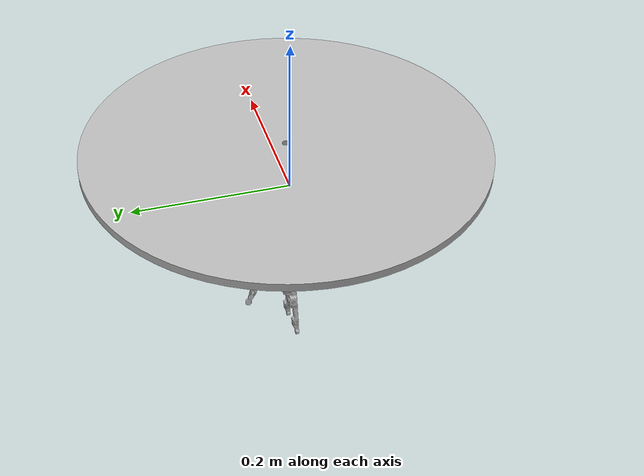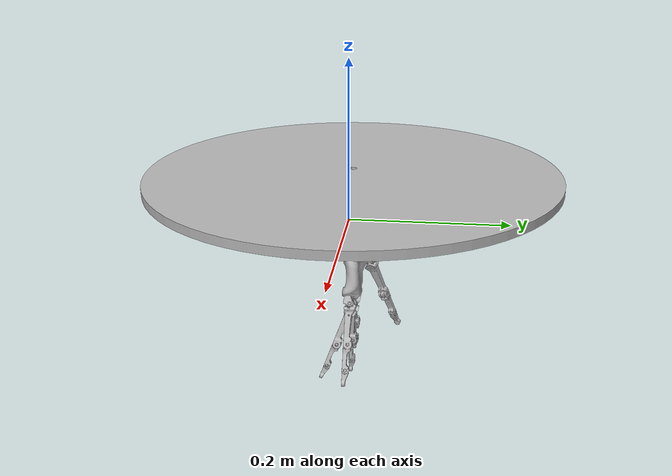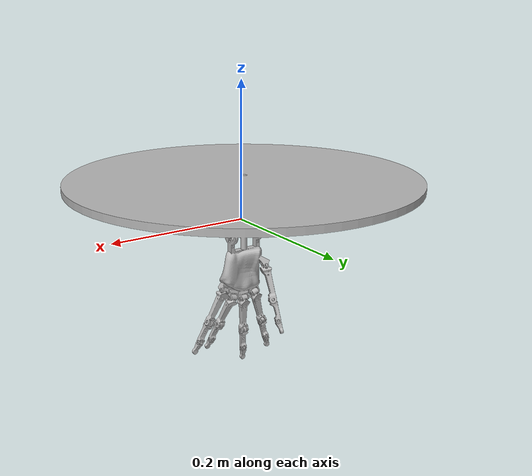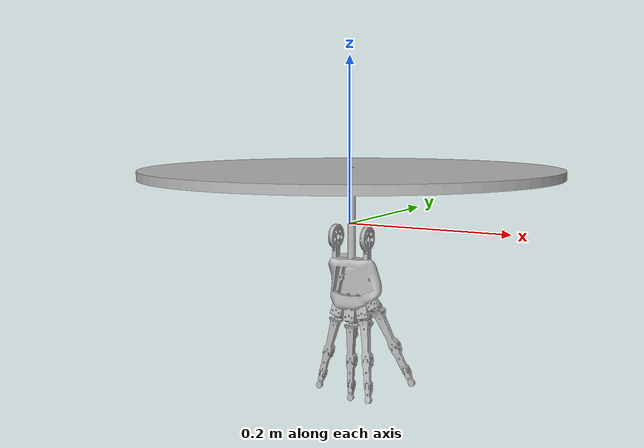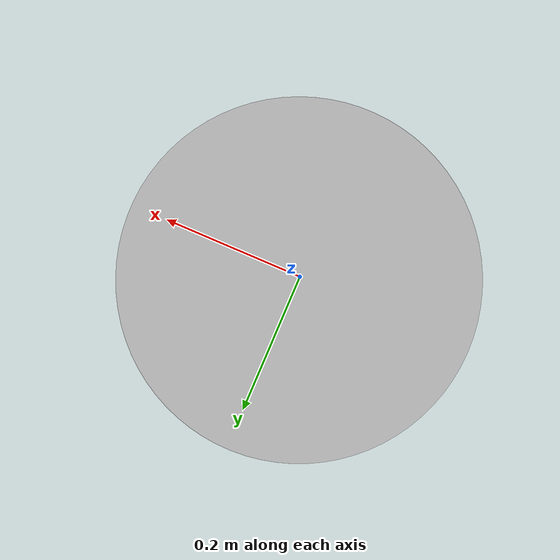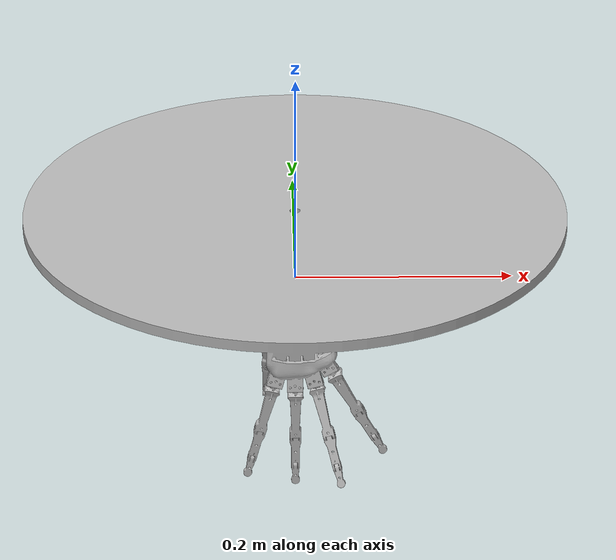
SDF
<?xml version="1.0" ?>
<sdf version="1.6">
	<model name="LeftHand">
		<link name="palm">
			<pose frame="">0.0 0.0 0.0 0.0 -0.0 0.0</pose>
			<inertial>
				<pose frame="">0.0 0.0 0.0 0 0 0</pose>
				<mass>10</mass>
				<inertia>
					<ixx>0.10370503908183999</ixx>
					<ixy>1.3379102641482672e-05</ixy>
					<ixz>-0.001620060262024168</ixz>
					<iyy>0.10358802097720089</iyy>
					<iyz>0.0001701705408159953</iyz>
					<izz>0.16582894798853867</izz>
				</inertia>
			</inertial>
			<collision name="palm_collision">
				<geometry>
					<mesh>
						<uri>model://LeftHand/meshes/CAD/palm.stl</uri>
						<scale>0.001 0.001 0.001</scale>
					</mesh>
				</geometry>
			</collision>
			<visual name="palm_visual">
				<geometry>
					<mesh>
						<uri>model://LeftHand/meshes/CAD/palm.stl</uri>
						<scale>0.001 0.001 0.001</scale>
					</mesh>
				</geometry>
			</visual>
		</link>
		<link name="ring_limb0">
			<pose frame="">0.0 0.0 0.0 0.0 -0.0 0.0</pose>
			<inertial>
				<pose frame="">0.0 0.0 0.0 0 0 0</pose>
				<mass>0.00001</mass>
				<inertia>
					<ixx>5.70518648194983e-06</ixx>
					<ixy>-4.3240878793659625e-08</ixy>
					<ixz>2.6419370768032044e-07</ixz>
					<iyy>5.847829902048378e-06</iyy>
					<iyz>9.311486939256404e-07</iyz>
					<izz>1.7250855397973145e-07</izz>
				</inertia>
			</inertial>
			<collision name="ring_limb0_collision">
				<geometry>
					<mesh>
						<uri>model://LeftHand/meshes/CAD/ring_limb0.stl</uri>
						<scale>0.001 0.001 0.001</scale>
					</mesh>
				</geometry>
			</collision>
			<visual name="ring_limb0_visual">
				<geometry>
					<mesh>
						<uri>model://LeftHand/meshes/CAD/ring_limb0.stl</uri>
						<scale>0.001 0.001 0.001</scale>
					</mesh>
				</geometry>
			</visual>
		</link>
		<link name="ring_limb1">
			<pose frame="">0.0 0.0 0.0 0.0 -0.0 0.0</pose>
			<inertial>
				<pose frame="">0.0 0.0 0.0 0 0 0</pose>
				<mass>0.00001</mass>
				<inertia>
					<ixx>7.265402554551641e-05</ixx>
					<ixy>4.4359390134379255e-07</ixy>
					<ixz>-2.3121848483359178e-06</ixz>
					<iyy>7.48581900470118e-05</iyy>
					<iyz>1.3127899937399327e-05</iyz>
					<izz>2.641817678600695e-06</izz>
				</inertia>
			</inertial>
			<collision name="ring_limb1_collision">
				<geometry>
					<mesh>
						<uri>model://LeftHand/meshes/CAD/ring_limb1.stl</uri>
						<scale>0.001 0.001 0.001</scale>
					</mesh>
				</geometry>
			</collision>
			<visual name="ring_limb1_visual">
				<geometry>
					<mesh>
						<uri>model://LeftHand/meshes/CAD/ring_limb1.stl</uri>
						<scale>0.001 0.001 0.001</scale>
					</mesh>
				</geometry>
			</visual>
		</link>
		<link name="ring_limb2">
			<pose frame="">0.0 0.0 0.0 0.0 -0.0 0.0</pose>
			<inertial>
				<pose frame="">0.0 0.0 0.0 0 0 0</pose>
				<mass>0.00001</mass>
				<inertia>
					<ixx>4.952114754535521e-05</ixx>
					<ixy>1.034955142248116e-06</ixy>
					<ixz>-5.19082425125159e-06</ixz>
					<iyy>5.088851411033829e-05</iyy>
					<iyz>9.72763536461381e-06</iyz>
					<izz>2.5202897538578307e-06</izz>
				</inertia>
			</inertial>
			<collision name="ring_limb2_collision">
				<geometry>
					<mesh>
						<uri>model://LeftHand/meshes/CAD/ring_limb2.stl</uri>
						<scale>0.001 0.001 0.001</scale>
					</mesh>
				</geometry>
			</collision>
			<visual name="ring_limb2_visual">
				<geometry>
					<mesh>
						<uri>model://LeftHand/meshes/CAD/ring_limb2.stl</uri>
						<scale>0.001 0.001 0.001</scale>
					</mesh>
				</geometry>
			</visual>
		</link>
		<link name="ring_limb3">
			<pose frame="">0.0 0.0 0.0 0.0 -0.0 0.0</pose>
			<inertial>
				<pose frame="">0.0 0.0 0.0 0 0 0</pose>
				<mass>0.00001</mass>
				<inertia>
					<ixx>2.7724203122666813e-05</ixx>
					<ixy>8.04556350827875e-07</ixy>
					<ixz>-3.8808069043846705e-06</ixz>
					<iyy>2.833338006682704e-05</iyy>
					<iyz>5.628302424917292e-06</iyz>
					<izz>1.727876470678124e-06</izz>
				</inertia>
			</inertial>
			<collision name="ring_limb3_collision">
				<geometry>
					<mesh>
						<uri>model://LeftHand/meshes/CAD/ring_limb3.stl</uri>
						<scale>0.001 0.001 0.001</scale>
					</mesh>
				</geometry>
			</collision>
			<visual name="ring_limb3_visual">
				<geometry>
					<mesh>
						<uri>model://LeftHand/meshes/CAD/ring_limb3.stl</uri>
						<scale>0.001 0.001 0.001</scale>
					</mesh>
				</geometry>
			</visual>
		</link>
		<link name="little_limb0">
			<pose frame="">0.0 0.0 0.0 0.0 -0.0 0.0</pose>
			<inertial>
				<pose frame="">0.0 0.0 0.0 0 0 0</pose>
				<mass>0.00001</mass>
				<inertia>
					<ixx>4.35558794133777e-06</ixx>
					<ixy>-7.320318351005178e-08</ixy>
					<ixz>2.2075537435390357e-07</ixz>
					<iyy>4.8245236479853865e-06</iyy>
					<iyz>1.439122803994224e-06</iyz>
					<izz>4.961439548441114e-07</izz>
				</inertia>
			</inertial>
			<collision name="little_limb0_collision">
				<geometry>
					<mesh>
						<uri>model://LeftHand/meshes/CAD/little_limb0.stl</uri>
						<scale>0.001 0.001 0.001</scale>
					</mesh>
				</geometry>
			</collision>
			<visual name="little_limb0_visual">
				<geometry>
					<mesh>
						<uri>model://LeftHand/meshes/CAD/little_limb0.stl</uri>
						<scale>0.001 0.001 0.001</scale>
					</mesh>
				</geometry>
			</visual>
		</link>
		<link name="little_limb1">
			<pose frame="">0.0 0.0 0.0 0.0 -0.0 0.0</pose>
			<inertial>
				<pose frame="">0.0 0.0 0.0 0 0 0</pose>
				<mass>0.00001</mass>
				<inertia>
					<ixx>5.797477920729646e-05</ixx>
					<ixy>-7.269326799885393e-07</ixy>
					<ixz>1.955102195820986e-06</ixz>
					<iyy>6.616226449855414e-05</iyy>
					<iyz>2.1814487470731944e-05</iyz>
					<izz>8.399312059509464e-06</izz>
				</inertia>
			</inertial>
			<collision name="little_limb1_collision">
				<geometry>
					<mesh>
						<uri>model://LeftHand/meshes/CAD/little_limb1.stl</uri>
						<scale>0.001 0.001 0.001</scale>
					</mesh>
				</geometry>
			</collision>
			<visual name="little_limb1_visual">
				<geometry>
					<mesh>
						<uri>model://LeftHand/meshes/CAD/little_limb1.stl</uri>
						<scale>0.001 0.001 0.001</scale>
					</mesh>
				</geometry>
			</visual>
		</link>
		<link name="little_limb2">
			<pose frame="">0.0 0.0 0.0 0.0 -0.0 0.0</pose>
			<inertial>
				<pose frame="">0.0 0.0 0.0 0 0 0</pose>
				<mass>0.00001</mass>
				<inertia>
					<ixx>3.935298315950893e-05</ixx>
					<ixy>-3.5754285677154177e-07</ixy>
					<ixz>8.565151683906668e-07</ixz>
					<iyy>4.6267387944779e-05</iyy>
					<iyz>1.650781571744048e-05</iyz>
					<izz>6.973161106688865e-06</izz>
				</inertia>
			</inertial>
			<collision name="little_limb2_collision">
				<geometry>
					<mesh>
						<uri>model://LeftHand/meshes/CAD/little_limb2.stl</uri>
						<scale>0.001 0.001 0.001</scale>
					</mesh>
				</geometry>
			</collision>
			<visual name="little_limb2_visual">
				<geometry>
					<mesh>
						<uri>model://LeftHand/meshes/CAD/little_limb2.stl</uri>
						<scale>0.001 0.001 0.001</scale>
					</mesh>
				</geometry>
			</visual>
		</link>
		<link name="little_limb3">
			<pose frame="">0.0 0.0 0.0 0.0 -0.0 0.0</pose>
			<inertial>
				<pose frame="">0.0 0.0 0.0 0 0 0</pose>
				<mass>0.00001</mass>
				<inertia>
					<ixx>2.2547791767825223e-05</ixx>
					<ixy>-1.4909623965506253e-07</ixy>
					<ixz>3.3963132070903805e-07</ixz>
					<iyy>2.6907536710997072e-05</iyy>
					<iyz>9.91849528260401e-06</iyz>
					<izz>4.375350062641281e-06</izz>
				</inertia>
			</inertial>
			<collision name="little_limb3_collision">
				<geometry>
					<mesh>
						<uri>model://LeftHand/meshes/CAD/little_limb3.stl</uri>
						<scale>0.001 0.001 0.001</scale>
					</mesh>
				</geometry>
			</collision>
			<visual name="little_limb3_visual">
				<geometry>
					<mesh>
						<uri>model://LeftHand/meshes/CAD/little_limb3.stl</uri>
						<scale>0.001 0.001 0.001</scale>
					</mesh>
				</geometry>
			</visual>
		</link>
		<link name="thumb_limb0">
			<pose frame="">0.0 0.0 0.0 0.0 -0.0 0.0</pose>
			<inertial>
				<pose frame="">0.0 0.0 0.0 0 0 0</pose>
				<mass>0.00001</mass>
				<inertia>
					<ixx>2.1819939213634567e-06</ixx>
					<ixy>2.630578155479799e-07</ixy>
					<ixz>7.069522131995127e-07</ixz>
					<iyy>2.1842368765602027e-06</iyy>
					<iyz>-7.13718022745526e-07</iyz>
					<izz>5.348246264645511e-07</izz>
				</inertia>
			</inertial>
			<collision name="thumb_limb0_collision">
				<geometry>
					<mesh>
						<uri>model://LeftHand/meshes/CAD/thumb_limb0.stl</uri>
						<scale>0.001 0.001 0.001</scale>
					</mesh>
				</geometry>
			</collision>
			<visual name="thumb_limb0_visual">
				<geometry>
					<mesh>
						<uri>model://LeftHand/meshes/CAD/thumb_limb0.stl</uri>
						<scale>0.001 0.001 0.001</scale>
					</mesh>
				</geometry>
			</visual>
		</link>
		<link name="thumb_limb1">
			<pose frame="">0.0 0.0 0.0 0.0 -0.0 0.0</pose>
			<inertial>
				<pose frame="">0.0 0.0 0.0 0 0 0</pose>
				<mass>0.00001</mass>
				<inertia>
					<ixx>3.562251426612123e-05</ixx>
					<ixy>3.2713821883161312e-06</ixy>
					<ixz>1.186626739400163e-05</ixz>
					<iyy>3.349046496438803e-05</iyy>
					<iyz>-8.569428970596472e-06</iyz>
					<izz>7.025492328146263e-06</izz>
				</inertia>
			</inertial>
			<collision name="thumb_limb1_collision">
				<geometry>
					<mesh>
						<uri>model://LeftHand/meshes/CAD/thumb_limb1.stl</uri>
						<scale>0.001 0.001 0.001</scale>
					</mesh>
				</geometry>
			</collision>
			<visual name="thumb_limb1_visual">
				<geometry>
					<mesh>
						<uri>model://LeftHand/meshes/CAD/thumb_limb1.stl</uri>
						<scale>0.001 0.001 0.001</scale>
					</mesh>
				</geometry>
			</visual>
		</link>
		<link name="thumb_limb2">
			<pose frame="">0.0 0.0 0.0 0.0 -0.0 0.0</pose>
			<inertial>
				<pose frame="">0.0 0.0 0.0 0 0 0</pose>
				<mass>0.00001</mass>
				<inertia>
					<ixx>2.9751055416704578e-05</ixx>
					<ixy>2.0744726107071765e-06</ixy>
					<ixz>1.0102131260703117e-05</ixz>
					<iyy>2.688038357001603e-05</iyy>
					<iyz>-5.294534109863701e-06</iyz>
					<izz>5.068304277953946e-06</izz>
				</inertia>
			</inertial>
			<collision name="thumb_limb2_collision">
				<geometry>
					<mesh>
						<uri>model://LeftHand/meshes/CAD/thumb_limb2.stl</uri>
						<scale>0.001 0.001 0.001</scale>
					</mesh>
				</geometry>
			</collision>
			<visual name="thumb_limb2_visual">
				<geometry>
					<mesh>
						<uri>model://LeftHand/meshes/CAD/thumb_limb2.stl</uri>
						<scale>0.001 0.001 0.001</scale>
					</mesh>
				</geometry>
			</visual>
		</link>
		<link name="thumb_limb3">
			<pose frame="">0.0 0.0 0.0 0.0 -0.0 0.0</pose>
			<inertial>
				<pose frame="">0.0 0.0 0.0 0 0 0</pose>
				<mass>0.00001</mass>
				<inertia>
					<ixx>1.8506572411630314e-05</ixx>
					<ixy>1.119158034675447e-06</ixy>
					<ixz>6.337788929721548e-06</ixz>
					<iyy>1.6493234104167078e-05</iyy>
					<iyz>-2.8237192588854132e-06</iyz>
					<izz>3.0153733036797124e-06</izz>
				</inertia>
			</inertial>
			<collision name="thumb_limb3_collision">
				<geometry>
					<mesh>
						<uri>model://LeftHand/meshes/CAD/thumb_limb3.stl</uri>
						<scale>0.001 0.001 0.001</scale>
					</mesh>
				</geometry>
			</collision>
			<visual name="thumb_limb3_visual">
				<geometry>
					<mesh>
						<uri>model://LeftHand/meshes/CAD/thumb_limb3.stl</uri>
						<scale>0.001 0.001 0.001</scale>
					</mesh>
				</geometry>
			</visual>
		</link>
		<link name="index_limb0">
			<pose frame="">0.0 0.0 0.0 0.0 -0.0 0.0</pose>
			<inertial>
				<pose frame="">0.0 0.0 0.0 0 0 0</pose>
				<mass>0.00001</mass>
				<inertia>
					<ixx>5.696396315690575e-06</ixx>
					<ixy>4.352364376914482e-08</ixy>
					<ixz>2.526333252288325e-07</ixz>
					<iyy>5.85656215849215e-06</iyy>
					<iyz>-9.786861419484764e-07</iyz>
					<izz>1.8738275226371254e-07</izz>
				</inertia>
			</inertial>
			<collision name="index_limb0_collision">
				<geometry>
					<mesh>
						<uri>model://LeftHand/meshes/CAD/index_limb0.stl</uri>
						<scale>0.001 0.001 0.001</scale>
					</mesh>
				</geometry>
			</collision>
			<visual name="index_limb0_visual">
				<geometry>
					<mesh>
						<uri>model://LeftHand/meshes/CAD/index_limb0.stl</uri>
						<scale>0.001 0.001 0.001</scale>
					</mesh>
				</geometry>
			</visual>
		</link>
		<link name="index_limb1">
			<pose frame="">0.0 0.0 0.0 0.0 -0.0 0.0</pose>
			<inertial>
				<pose frame="">0.0 0.0 0.0 0 0 0</pose>
				<mass>0.00001</mass>
				<inertia>
					<ixx>7.533171793117199e-05</ixx>
					<ixy>4.492241461728259e-07</ixy>
					<ixz>2.3921493926142674e-06</ixz>
					<iyy>7.796512931418711e-05</iyy>
					<iyz>-1.4265341307765165e-05</iyz>
					<izz>2.8656360821360042e-06</izz>
				</inertia>
			</inertial>
			<collision name="index_limb1_collision">
				<geometry>
					<mesh>
						<uri>model://LeftHand/meshes/CAD/index_limb1.stl</uri>
						<scale>0.001 0.001 0.001</scale>
					</mesh>
				</geometry>
			</collision>
			<visual name="index_limb1_visual">
				<geometry>
					<mesh>
						<uri>model://LeftHand/meshes/CAD/index_limb1.stl</uri>
						<scale>0.001 0.001 0.001</scale>
					</mesh>
				</geometry>
			</visual>
		</link>
		<link name="index_limb2">
			<pose frame="">0.0 0.0 0.0 0.0 -0.0 0.0</pose>
			<inertial>
				<pose frame="">0.0 0.0 0.0 0 0 0</pose>
				<mass>0.00001</mass>
				<inertia>
					<ixx>5.150513740195316e-05</ixx>
					<ixy>2.2111491965128255e-07</ixy>
					<ixz>1.0773047560158625e-06</ixz>
					<iyy>5.366828680317941e-05</iyy>
					<iyz>-1.0607817002180134e-05</iyz>
					<izz>2.2301760846463064e-06</izz>
				</inertia>
			</inertial>
			<collision name="index_limb2_collision">
				<geometry>
					<mesh>
						<uri>model://LeftHand/meshes/CAD/index_limb2.stl</uri>
						<scale>0.001 0.001 0.001</scale>
					</mesh>
				</geometry>
			</collision>
			<visual name="index_limb2_visual">
				<geometry>
					<mesh>
						<uri>model://LeftHand/meshes/CAD/index_limb2.stl</uri>
						<scale>0.001 0.001 0.001</scale>
					</mesh>
				</geometry>
			</visual>
		</link>
		<link name="index_limb3">
			<pose frame="">0.0 0.0 0.0 0.0 -0.0 0.0</pose>
			<inertial>
				<pose frame="">0.0 0.0 0.0 0 0 0</pose>
				<mass>0.00001</mass>
				<inertia>
					<ixx>2.89101342305928e-05</ixx>
					<ixy>9.13166725961899e-08</ixy>
					<ixz>4.275517346457047e-07</ixz>
					<iyy>3.0226416068812014e-05</iyy>
					<iyz>-6.183306903236268e-06</iyz>
					<izz>1.3343173846196303e-06</izz>
				</inertia>
			</inertial>
			<collision name="index_limb3_collision">
				<geometry>
					<mesh>
						<uri>model://LeftHand/meshes/CAD/index_limb3.stl</uri>
						<scale>0.001 0.001 0.001</scale>
					</mesh>
				</geometry>
			</collision>
			<visual name="index_limb3_visual">
				<geometry>
					<mesh>
						<uri>model://LeftHand/meshes/CAD/index_limb3.stl</uri>
						<scale>0.001 0.001 0.001</scale>
					</mesh>
				</geometry>
			</visual>
		</link>
		<link name="middle_limb0">
			<pose frame="">0.0 0.0 0.0 0.0 -0.0 0.0</pose>
			<inertial>
				<pose frame="">0.0 0.0 0.0 0 0 0</pose>
				<mass>0.00001</mass>
				<inertia>
					<ixx>6.220931215255119e-06</ixx>
					<ixy>-2.9280517172989784e-12</ixy>
					<ixz>2.6401612367372733e-07</ixz>
					<iyy>6.21241882682548e-06</iyy>
					<iyz>4.165012047708736e-11</iyz>
					<izz>1.869819424248227e-08</izz>
				</inertia>
			</inertial>
			<collision name="middle_limb0_collision">
				<geometry>
					<mesh>
						<uri>model://LeftHand/meshes/CAD/middle_limb0.stl</uri>
						<scale>0.001 0.001 0.001</scale>
					</mesh>
				</geometry>
			</collision>
			<visual name="middle_limb0_visual">
				<geometry>
					<mesh>
						<uri>model://LeftHand/meshes/CAD/middle_limb0.stl</uri>
						<scale>0.001 0.001 0.001</scale>
					</mesh>
				</geometry>
			</visual>
		</link>
		<link name="middle_limb1">
			<pose frame="">0.0 0.0 0.0 0.0 -0.0 0.0</pose>
			<inertial>
				<pose frame="">0.0 0.0 0.0 0 0 0</pose>
				<mass>0.00001</mass>
				<inertia>
					<ixx>8.096748853092092e-05</ixx>
					<ixy>-1.010033148855116e-12</ixy>
					<ixz>2.3057982785490035e-06</ixz>
					<iyy>8.089935723228345e-05</iyy>
					<iyz>1.5570927857065174e-11</iyz>
					<izz>1.4238044463764945e-07</izz>
				</inertia>
			</inertial>
			<collision name="middle_limb1_collision">
				<geometry>
					<mesh>
						<uri>model://LeftHand/meshes/CAD/middle_limb1.stl</uri>
						<scale>0.001 0.001 0.001</scale>
					</mesh>
				</geometry>
			</collision>
			<visual name="middle_limb1_visual">
				<geometry>
					<mesh>
						<uri>model://LeftHand/meshes/CAD/middle_limb1.stl</uri>
						<scale>0.001 0.001 0.001</scale>
					</mesh>
				</geometry>
			</visual>
		</link>
		<link name="middle_limb2">
			<pose frame="">0.0 0.0 0.0 0.0 -0.0 0.0</pose>
			<inertial>
				<pose frame="">0.0 0.0 0.0 0 0 0</pose>
				<mass>0.00001</mass>
				<inertia>
					<ixx>5.577988183128855e-05</ixx>
					<ixy>1.1170535500077128e-12</ixy>
					<ixz>1.0301843374132112e-06</ixz>
					<iyy>5.575946760263562e-05</iyy>
					<iyz>-3.9783898817763056e-11</iyz>
					<izz>3.9477655466014145e-08</izz>
				</inertia>
			</inertial>
			<collision name="middle_limb2_collision">
				<geometry>
					<mesh>
						<uri>model://LeftHand/meshes/CAD/middle_limb2.stl</uri>
						<scale>0.001 0.001 0.001</scale>
					</mesh>
				</geometry>
			</collision>
			<visual name="middle_limb2_visual">
				<geometry>
					<mesh>
						<uri>model://LeftHand/meshes/CAD/middle_limb2.stl</uri>
						<scale>0.001 0.001 0.001</scale>
					</mesh>
				</geometry>
			</visual>
		</link>
		<link name="middle_limb3">
			<pose frame="">0.0 0.0 0.0 0.0 -0.0 0.0</pose>
			<inertial>
				<pose frame="">0.0 0.0 0.0 0 0 0</pose>
				<mass>0.00001</mass>
				<inertia>
					<ixx>3.126942660218029e-05</ixx>
					<ixy>9.770606142305848e-14</ixy>
					<ixz>4.0004172461025477e-07</ixz>
					<iyy>3.126385415013449e-05</iyy>
					<iyz>-3.760132469602895e-12</iyz>
					<izz>1.0032349759270294e-08</izz>
				</inertia>
			</inertial>
			<collision name="middle_limb3_collision">
				<geometry>
					<mesh>
						<uri>model://LeftHand/meshes/CAD/middle_limb3.stl</uri>
						<scale>0.001 0.001 0.001</scale>
					</mesh>
				</geometry>
			</collision>
			<visual name="middle_limb3_visual">
				<geometry>
					<mesh>
						<uri>model://LeftHand/meshes/CAD/middle_limb3.stl</uri>
						<scale>0.001 0.001 0.001</scale>
					</mesh>
				</geometry>
			</visual>
		</link>
		<joint name="ring0" type="revolute">
			<parent>palm</parent>
			<child>ring_limb0</child>
			<pose frame="">0.011822362340004855 0.005000000000000015 -0.11795045711084329 0 0 0</pose>
			<axis>
				<xyz>-0.9659258262890762 -4.904700770684754e-16 -0.25881904510252224</xyz>
				<limit>
					<lower>-0.3490658503988659</lower>
					<upper>1.2217304763960306</upper>
				</limit>
				<use_parent_model_frame>0</use_parent_model_frame>
			</axis>
		</joint>
		<joint name="index0" type="revolute">
			<parent>palm</parent>
			<child>index_limb0</child>
			<pose frame="">-0.027311249734341195 0.004999999999999993 -0.11406817143430555 0 0 0</pose>
			<axis>
				<xyz>-0.9659258262890775 -5.479394496853379e-16 0.2588190451025223</xyz>
				<limit>
					<lower>-0.3490658503988659</lower>
					<upper>1.2217304763960306</upper>
				</limit>
				<use_parent_model_frame>0</use_parent_model_frame>
			</axis>
		</joint>
		<joint name="thumb0" type="revolute">
			<parent>palm</parent>
			<child>thumb_limb0</child>
			<pose frame="">-0.022427942673564766 0.03156434425758929 -0.06491294267356412 0 0 0</pose>
			<axis>
				<xyz>0.3535533905932764 0.8660254037844375 0.3535533905932753</xyz>
				<limit>
					<lower>-0.3490658503988659</lower>
					<upper>1.2217304763960306</upper>
				</limit>
				<use_parent_model_frame>0</use_parent_model_frame>
			</axis>
		</joint>
		<joint name="little0" type="revolute">
			<parent>palm</parent>
			<child>little_limb0</child>
			<pose frame="">0.0273164518843275 0.005000000000000023 -0.10516450794994985 0 0 0</pose>
			<axis>
				<xyz>0.866025403784445 4.0999510464529535e-16 0.5000000000000029</xyz>
				<limit>
					<lower>-0.3490658503988659</lower>
					<upper>1.2217304763960306</upper>
				</limit>
				<use_parent_model_frame>0</use_parent_model_frame>
			</axis>
		</joint>
		<joint name="middle0" type="revolute">
			<parent>palm</parent>
			<child>middle_limb0</child>
			<pose frame="">0.004999999999999992 0.005000000000000012 -0.12124999999999996 0 0 0</pose>
			<axis>
				<xyz>-1.0000000000000089 9.930890339105123e-17 -1.4559772246072405e-17</xyz>
				<limit>
					<lower>-0.3490658503988659</lower>
					<upper>1.2217304763960306</upper>
				</limit>
				<use_parent_model_frame>0</use_parent_model_frame>
			</axis>
		</joint>
		<joint name="little1" type="revolute">
			<parent>little_limb0</parent>
			<child>little_limb1</child>
			<pose frame="">0.03306164241271076 0.002401923788646701 -0.10011546984427323 0 0 0</pose>
			<axis>
				<xyz>-0.25000000000000516 -0.8660254037844385 0.43301270189221686</xyz>
				<limit>
					<lower>-0.3141592653589793</lower>
					<upper>0.3141592653589793</upper>
				</limit>
				<use_parent_model_frame>0</use_parent_model_frame>
			</axis>
		</joint>
		<joint name="little2" type="revolute">
			<parent>little_limb1</parent>
			<child>little_limb2</child>
			<pose frame="">0.05461100269189609 0.005066987298107553 -0.14844005671842964 0 0 0</pose>
			<axis>
				<xyz>0.8660254037844395 -7.969319648637452e-15 0.49999999999999606</xyz>
				<limit>
					<lower>0.0</lower>
					<upper>1.9198621771937625</upper>
				</limit>
				<use_parent_model_frame>0</use_parent_model_frame>
			</axis>
		</joint>
		<joint name="little3" type="revolute">
			<parent>little_limb2</parent>
			<child>little_limb3</child>
			<pose frame="">0.07178491579757272 0.0035669872981074963 -0.17518614678223457 0 0 0</pose>
			<axis>
				<xyz>0.8660254037844395 -7.969319648637452e-15 0.49999999999999606</xyz>
				<limit>
					<lower>0.0</lower>
					<upper>1.2217304763960306</upper>
				</limit>
				<use_parent_model_frame>0</use_parent_model_frame>
			</axis>
		</joint>
		<joint name="ring1" type="revolute">
			<parent>ring_limb0</parent>
			<child>ring_limb1</child>
			<pose frame="">0.01847200536335035 0.0030716371709403347 -0.11378948793749291 0 0 0</pose>
			<axis>
				<xyz>-0.198266891274149 -0.6427876096865431 0.7399421116938513</xyz>
				<limit>
					<lower>-0.3141592653589793</lower>
					<upper>0.3141592653589793</upper>
				</limit>
				<use_parent_model_frame>0</use_parent_model_frame>
			</axis>
		</joint>
		<joint name="ring2" type="revolute">
			<parent>ring_limb1</parent>
			<child>ring_limb2</child>
			<pose frame="">0.026194272777333615 -0.012422832357806682 -0.16385975045447154 0 0 0</pose>
			<axis>
				<xyz>0.9659258262890722 -8.101158632811689e-16 0.25881904510252285</xyz>
				<limit>
					<lower>0</lower>
					<upper>1.9198621771937625</upper>
				</limit>
				<use_parent_model_frame>0</use_parent_model_frame>
			</axis>
		</joint>
		<joint name="ring3" type="revolute">
			<parent>ring_limb2</parent>
			<child>ring_limb3</child>
			<pose frame="">0.03523224723478227 -0.02469142533453978 -0.1917943753694453 0 0 0</pose>
			<axis>
				<xyz>0.9659258262890722 -8.101158632811689e-16 0.25881904510252285</xyz>
				<limit>
					<lower>0.0</lower>
					<upper>1.2217304763960306</upper>
				</limit>
				<use_parent_model_frame>0</use_parent_model_frame>
			</axis>
		</joint>
		<joint name="thumb1" type="revolute">
			<parent>thumb_limb0</parent>
			<child>thumb_limb1</child>
			<pose frame="">-0.027104824571266863 0.02530538152483692 -0.06611799919711926 0 0 0</pose>
			<axis>
				<xyz>0.8100925873009869 -0.09449111825231679 -0.5786375623578539</xyz>
				<limit>
					<lower>-0.3141592653589793</lower>
					<upper>0.3141592653589793</upper>
				</limit>
				<use_parent_model_frame>0</use_parent_model_frame>
			</axis>
		</joint>
		<joint name="thumb2" type="revolute">
			<parent>thumb_limb1</parent>
			<child>thumb_limb2</child>
			<pose frame="">-0.022667342281404462 0.04908655483319237 -0.11325087239104441 0 0 0</pose>
			<axis>
				<xyz>-0.35355339059328617 -0.8660254037844398 -0.35355339059326946</xyz>
				<limit>
					<lower>0.0</lower>
					<upper>1.9198621771937625</upper>
				</limit>
				<use_parent_model_frame>0</use_parent_model_frame>
			</axis>
		</joint>
		<joint name="thumb3" type="revolute">
			<parent>thumb_limb2</parent>
			<child>thumb_limb3</child>
			<pose frame="">-0.02460079388733464 0.060278784507471254 -0.14297531325825383 0 0 0</pose>
			<axis>
				<xyz>-0.3535533905932865 -0.8660254037844414 -0.3535533905932668</xyz>
				<limit>
					<lower>0.0</lower>
					<upper>1.2217304763960306</upper>
				</limit>
				<use_parent_model_frame>0</use_parent_model_frame>
			</axis>
		</joint>
		<joint name="middle1" type="revolute">
			<parent>middle_limb0</parent>
			<child>middle_limb1</child>
			<pose frame="">0.0 0.002401923788646685 -0.11975 0 0 0</pose>
			<axis>
				<xyz>6.842277657836021e-49 -0.8660254037844388 0.5</xyz>
				<limit>
					<lower>-0.6108652381980153</lower>
					<upper>0.6108652381980153</upper>
				</limit>
				<use_parent_model_frame>0</use_parent_model_frame>
			</axis>
		</joint>
		<joint name="middle2" type="revolute">
			<parent>middle_limb1</parent>
			<child>middle_limb2</child>
			<pose frame="">-0.0055000000000000005 0.00506698729810778 -0.172375 0 0 0</pose>
			<axis>
				<xyz>1.0 0.0 0.0</xyz>
				<limit>
					<lower>0.0</lower>
					<upper>1.9198621771937625</upper>
				</limit>
				<use_parent_model_frame>0</use_parent_model_frame>
			</axis>
		</joint>
		<joint name="middle3" type="revolute">
			<parent>middle_limb2</parent>
			<child>middle_limb3</child>
			<pose frame="">-0.004 0.003566987298107776 -0.20412475000000002 0 0 0</pose>
			<axis>
				<xyz>1.0 0.0 0.0</xyz>
				<limit>
					<lower>0.0</lower>
					<upper>1.2217304763960306</upper>
				</limit>
				<use_parent_model_frame>0</use_parent_model_frame>
			</axis>
		</joint>
		<joint name="index1" type="revolute">
			<parent>index_limb0</parent>
			<child>index_limb1</child>
			<pose frame="">-0.01974328223079509 0.0028349364905388918 -0.11480190698971318 0 0 0</pose>
			<axis>
				<xyz>-0.12940952255125399 0.8660254037844273 -0.482962913144532</xyz>
				<limit>
					<lower>-0.3141592653589793</lower>
					<upper>0.3141592653589793</upper>
				</limit>
				<use_parent_model_frame>0</use_parent_model_frame>
			</axis>
		</joint>
		<joint name="index2" type="revolute">
			<parent>index_limb1</parent>
			<child>index_limb2</child>
			<pose frame="">-0.03865681509552307 0.005370096189431485 -0.1641378044131407 0 0 0</pose>
			<axis>
				<xyz>0.9659258262890686 -8.975054892207292e-16 -0.25881904510251696</xyz>
				<limit>
					<lower>0.0</lower>
					<upper>1.9198621771937625</upper>
				</limit>
				<use_parent_model_frame>0</use_parent_model_frame>
			</axis>
		</joint>
		<joint name="index3" type="revolute">
			<parent>index_limb2</parent>
			<child>index_limb3</child>
			<pose frame="">-0.04542536633333317 0.0038700961894312714 -0.1951939364840159 0 0 0</pose>
			<axis>
				<xyz>0.9659258262890686 -1.2698175844150228e-15 -0.25881904510251696</xyz>
				<limit>
					<lower>0.0</lower>
					<upper>1.2217304763960306</upper>
				</limit>
				<use_parent_model_frame>0</use_parent_model_frame>
			</axis>
		</joint>
		<plugin filename="libfinger_plugin.so" name="finger_plugin"/>
	</model>
</sdf>
